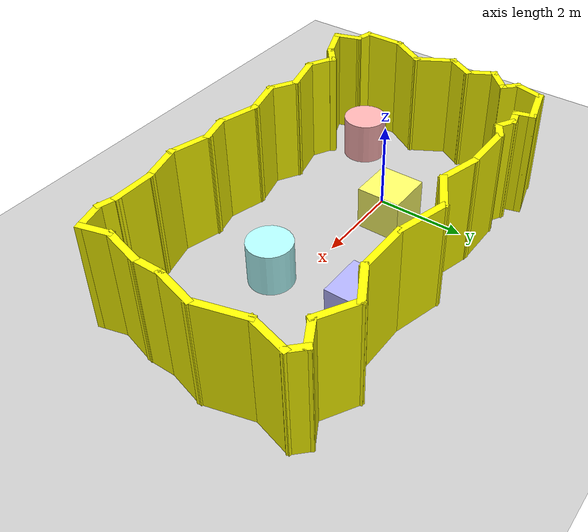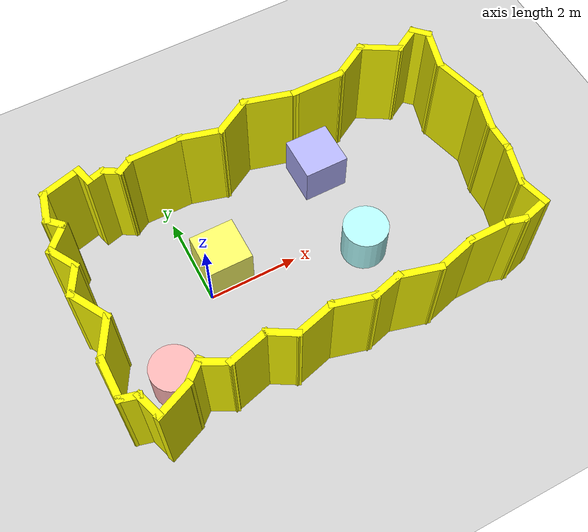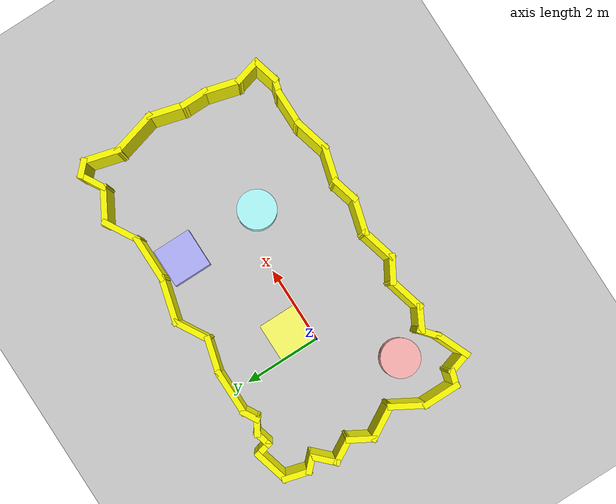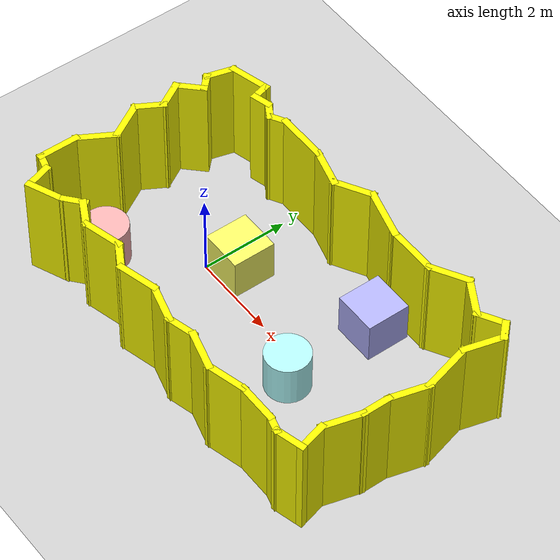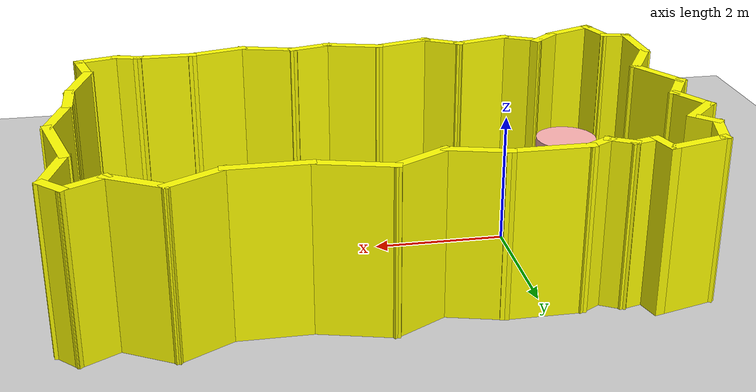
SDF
<sdf version="1.6">
 <world name="default">
  <light name="sun" type="directional">
   <pose>0 0 10 0 -0 0</pose>
   <diffuse>0.8 0.8 0.8 1</diffuse>
   <specular>0.2 0.2 0.2 1</specular>
   <attenuation>
    <range>1000</range>
    <constant>0.9</constant>
    <linear>0.01</linear>
    <quadratic>0.001</quadratic>
   </attenuation>
   <direction>-0.5 0.1 -0.9</direction>
  </light>
  <model name="ground_plane">
   <static>1</static>
   <link name="link">
    <collision name="collision">
     <geometry><plane><normal>0 0 1</normal><size>100 100</size></plane></geometry>
     <surface>
      <contact><collide_bitmask>65535</collide_bitmask></contact>
      <friction><ode><mu>100</mu><mu2>50</mu2></ode></friction>
     </surface>
    </collision>
    <visual name="visual">
     <cast_shadows>0</cast_shadows>
     <geometry><plane><normal>0 0 1</normal><size>100 100</size></plane></geometry>
     <material>
      <script><uri>file://media/materials/scripts/gazebo.material</uri><name>Gazebo/Grey</name></script>
     </material>
    </visual>
   </link>
  </model>
  <gravity>0 0 -9.8</gravity>
  <magnetic_field>6e-06 2.3e-05 -4.2e-05</magnetic_field>
  <atmosphere type="adiabatic"/>
  <physics name="default_physics" default="0" type="ode">
   <max_step_size>0.001</max_step_size>
   <real_time_factor>1</real_time_factor>
   <real_time_update_rate>1000</real_time_update_rate>
  </physics>
  <scene><ambient>0.4 0.4 0.4 1</ambient><background>0.7 0.7 0.7 1</background><shadows>1</shadows></scene>
  <audio><device>default</device></audio>
  <spherical_coordinates>
   <surface_model>EARTH_WGS84</surface_model>
   <latitude_deg>0</latitude_deg>
   <longitude_deg>0</longitude_deg>
   <elevation>0</elevation>
   <heading_deg>0</heading_deg>
  </spherical_coordinates>
  <model name="maze4">
   <pose>1.98225 -0.008661 0 0 -0 0</pose>
   <link name="Wall_10">
    <collision name="Wall_10_Collision">
     <geometry><box><size>1 0.15 2.5</size></box></geometry>
     <pose>0 0 1.25 0 -0 0</pose>
    </collision>
    <visual name="Wall_10_Visual">
     <pose>0 0 1.25 0 -0 0</pose>
     <geometry><box><size>1 0.15 2.5</size></box></geometry>
     <material>
      <script><uri>file://media/materials/scripts/gazebo.material</uri><name>Gazebo/Grey</name></script>
      <ambient>1 1 0 1</ambient>
     </material>
     <meta><layer>0</layer></meta>
    </visual>
    <pose>3.03563 -2.37458 0 0 -0 0</pose>
   </link>
   <link name="Wall_11">
    <collision name="Wall_11_Collision">
     <geometry><box><size>0.5 0.15 2.5</size></box></geometry>
     <pose>0 0 1.25 0 -0 0</pose>
    </collision>
    <visual name="Wall_11_Visual">
     <pose>0 0 1.25 0 -0 0</pose>
     <geometry><box><size>0.5 0.15 2.5</size></box></geometry>
     <material>
      <script><uri>file://media/materials/scripts/gazebo.material</uri><name>Gazebo/Grey</name></script>
      <ambient>1 1 0 1</ambient>
     </material>
     <meta><layer>0</layer></meta>
    </visual>
    <pose>3.62967 -2.41987 0 0 -0 -0.261799</pose>
   </link>
   <link name="Wall_12">
    <collision name="Wall_12_Collision">
     <geometry><box><size>0.75 0.15 2.5</size></box></geometry>
     <pose>0 0 1.25 0 -0 0</pose>
    </collision>
    <visual name="Wall_12_Visual">
     <pose>0 0 1.25 0 -0 0</pose>
     <geometry><box><size>0.75 0.15 2.5</size></box></geometry>
     <material>
      <script><uri>file://media/materials/scripts/gazebo.material</uri><name>Gazebo/Grey</name></script>
      <ambient>1 1 0 1</ambient>
     </material>
     <meta><layer>0</layer></meta>
    </visual>
    <pose>4.08848 -2.38752 0 0 -0 0.261799</pose>
   </link>
   <link name="Wall_13">
    <collision name="Wall_13_Collision">
     <geometry><box><size>0.75 0.15 2.5</size></box></geometry>
     <pose>0 0 1.25 0 -0 0</pose>
    </collision>
    <visual name="Wall_13_Visual">
     <pose>0 0 1.25 0 -0 0</pose>
     <geometry><box><size>0.75 0.15 2.5</size></box></geometry>
     <material>
      <script><uri>file://media/materials/scripts/gazebo.material</uri><name>Gazebo/Grey</name></script>
      <ambient>1 1 0 1</ambient>
     </material>
     <meta><layer>0</layer></meta>
    </visual>
    <pose>4.30061 -2.0201 0 0 -0 1.8326</pose>
   </link>
   <link name="Wall_14">
    <collision name="Wall_14_Collision">
     <geometry><box><size>1 0.15 2.5</size></box></geometry>
     <pose>0 0 1.25 0 -0 0</pose>
    </collision>
    <visual name="Wall_14_Visual">
     <pose>0 0 1.25 0 -0 0</pose>
     <geometry><box><size>1 0.15 2.5</size></box></geometry>
     <material>
      <script><uri>file://media/materials/scripts/gazebo.material</uri><name>Gazebo/Grey</name></script>
      <ambient>1 1 0 1</ambient>
     </material>
     <meta><layer>0</layer></meta>
    </visual>
    <pose>4.33297 -1.3198 0 0 -0 1.309</pose>
   </link>
   <link name="Wall_15">
    <collision name="Wall_15_Collision">
     <geometry><box><size>0.75 0.15 2.5</size></box></geometry>
     <pose>0 0 1.25 0 -0 0</pose>
    </collision>
    <visual name="Wall_15_Visual">
     <pose>0 0 1.25 0 -0 0</pose>
     <geometry><box><size>0.75 0.15 2.5</size></box></geometry>
     <material>
      <script><uri>file://media/materials/scripts/gazebo.material</uri><name>Gazebo/Grey</name></script>
      <ambient>1 1 0 1</ambient>
     </material>
     <meta><layer>0</layer></meta>
    </visual>
    <pose>4.44297 -0.609282 0 0 -0 1.5708</pose>
   </link>
   <link name="Wall_16">
    <collision name="Wall_16_Collision">
     <geometry><box><size>1 0.15 2.5</size></box></geometry>
     <pose>0 0 1.25 0 -0 0</pose>
    </collision>
    <visual name="Wall_16_Visual">
     <pose>0 0 1.25 0 -0 0</pose>
     <geometry><box><size>1 0.15 2.5</size></box></geometry>
     <material>
      <script><uri>file://media/materials/scripts/gazebo.material</uri><name>Gazebo/Grey</name></script>
      <ambient>1 1 0 1</ambient>
     </material>
     <meta><layer>0</layer></meta>
    </visual>
    <pose>4.55296 0.101236 0 0 -0 1.309</pose>
   </link>
   <link name="Wall_17">
    <collision name="Wall_17_Collision">
     <geometry><box><size>1.25 0.15 2.5</size></box></geometry>
     <pose>0 0 1.25 0 -0 0</pose>
    </collision>
    <visual name="Wall_17_Visual">
     <pose>0 0 1.25 0 -0 0</pose>
     <geometry><box><size>1.25 0.15 2.5</size></box></geometry>
     <material>
      <script><uri>file://media/materials/scripts/gazebo.material</uri><name>Gazebo/Grey</name></script>
      <ambient>1 1 0 1</ambient>
     </material>
     <meta><layer>0</layer></meta>
    </visual>
    <pose>4.52061 1.04301 0 0 -0 1.8326</pose>
   </link>
   <link name="Wall_18">
    <collision name="Wall_18_Collision">
     <geometry><box><size>1 0.15 2.5</size></box></geometry>
     <pose>0 0 1.25 0 -0 0</pose>
    </collision>
    <visual name="Wall_18_Visual">
     <pose>0 0 1.25 0 -0 0</pose>
     <geometry><box><size>1 0.15 2.5</size></box></geometry>
     <material>
      <script><uri>file://media/materials/scripts/gazebo.material</uri><name>Gazebo/Grey</name></script>
      <ambient>1 1 0 1</ambient>
     </material>
     <meta><layer>0</layer></meta>
    </visual>
    <pose>4.48826 1.98479 0 0 -0 1.309</pose>
   </link>
   <link name="Wall_19">
    <collision name="Wall_19_Collision">
     <geometry><box><size>0.5 0.15 2.5</size></box></geometry>
     <pose>0 0 1.25 0 -0 0</pose>
    </collision>
    <visual name="Wall_19_Visual">
     <pose>0 0 1.25 0 -0 0</pose>
     <geometry><box><size>0.5 0.15 2.5</size></box></geometry>
     <material>
      <script><uri>file://media/materials/scripts/gazebo.material</uri><name>Gazebo/Grey</name></script>
      <ambient>1 1 0 1</ambient>
     </material>
     <meta><layer>0</layer></meta>
    </visual>
    <pose>4.47451 2.51905 0 0 -0 2.35619</pose>
   </link>
   <link name="Wall_2">
    <collision name="Wall_2_Collision">
     <geometry><box><size>0.733012 0.15 2.5</size></box></geometry>
     <pose>0 0 1.25 0 -0 0</pose>
    </collision>
    <visual name="Wall_2_Visual">
     <pose>0 0 1.25 0 -0 0</pose>
     <geometry><box><size>0.733012 0.15 2.5</size></box></geometry>
     <material>
      <script><uri>file://media/materials/scripts/gazebo.material</uri><name>Gazebo/Grey</name></script>
      <ambient>1 1 0 1</ambient>
     </material>
     <meta><layer>0</layer></meta>
    </visual>
    <pose>-2.85174 -2.31421 0 0 -0 -0.484046</pose>
   </link>
   <link name="Wall_20">
    <collision name="Wall_20_Collision">
     <geometry><box><size>0.75 0.15 2.5</size></box></geometry>
     <pose>0 0 1.25 0 -0 0</pose>
    </collision>
    <visual name="Wall_20_Visual">
     <pose>0 0 1.25 0 -0 0</pose>
     <geometry><box><size>0.75 0.15 2.5</size></box></geometry>
     <material>
      <script><uri>file://media/materials/scripts/gazebo.material</uri><name>Gazebo/Grey</name></script>
      <ambient>1 1 0 1</ambient>
     </material>
     <meta><layer>0</layer></meta>
    </visual>
    <pose>4.09096 2.4928 0 0 -0 -2.61799</pose>
   </link>
   <link name="Wall_21">
    <collision name="Wall_21_Collision">
     <geometry><box><size>1 0.15 2.5</size></box></geometry>
     <pose>0 0 1.25 0 -0 0</pose>
    </collision>
    <visual name="Wall_21_Visual">
     <pose>0 0 1.25 0 -0 0</pose>
     <geometry><box><size>1 0.15 2.5</size></box></geometry>
     <material>
      <script><uri>file://media/materials/scripts/gazebo.material</uri><name>Gazebo/Grey</name></script>
      <ambient>1 1 0 1</ambient>
     </material>
     <meta><layer>0</layer></meta>
    </visual>
    <pose>3.46309 2.5553 0 0 -0 2.61799</pose>
   </link>
   <link name="Wall_22">
    <collision name="Wall_22_Collision">
     <geometry><box><size>1 0.15 2.5</size></box></geometry>
     <pose>0 0 1.25 0 -0 0</pose>
    </collision>
    <visual name="Wall_22_Visual">
     <pose>0 0 1.25 0 -0 0</pose>
     <geometry><box><size>1 0.15 2.5</size></box></geometry>
     <material>
      <script><uri>file://media/materials/scripts/gazebo.material</uri><name>Gazebo/Grey</name></script>
      <ambient>1 1 0 1</ambient>
     </material>
     <meta><layer>0</layer></meta>
    </visual>
    <pose>2.72697 2.5553 0 0 -0 -2.61799</pose>
   </link>
   <link name="Wall_23">
    <collision name="Wall_23_Collision">
     <geometry><box><size>1.25 0.15 2.5</size></box></geometry>
     <pose>0 0 1.25 0 -0 0</pose>
    </collision>
    <visual name="Wall_23_Visual">
     <pose>0 0 1.25 0 -0 0</pose>
     <geometry><box><size>1.25 0.15 2.5</size></box></geometry>
     <material>
      <script><uri>file://media/materials/scripts/gazebo.material</uri><name>Gazebo/Grey</name></script>
      <ambient>1 1 0 1</ambient>
     </material>
     <meta><layer>0</layer></meta>
    </visual>
    <pose>1.80891 2.3428 0 0 -0 3.14159</pose>
   </link>
   <link name="Wall_24">
    <collision name="Wall_24_Collision">
     <geometry><box><size>1.25 0.15 2.5</size></box></geometry>
     <pose>0 0 1.25 0 -0 0</pose>
    </collision>
    <visual name="Wall_24_Visual">
     <pose>0 0 1.25 0 -0 0</pose>
     <geometry><box><size>1.25 0.15 2.5</size></box></geometry>
     <material>
      <script><uri>file://media/materials/scripts/gazebo.material</uri><name>Gazebo/Grey</name></script>
      <ambient>1 1 0 1</ambient>
     </material>
     <meta><layer>0</layer></meta>
    </visual>
    <pose>0.727651 2.48515 0 0 -0 2.87979</pose>
   </link>
   <link name="Wall_25">
    <collision name="Wall_25_Collision">
     <geometry><box><size>1 0.15 2.5</size></box></geometry>
     <pose>0 0 1.25 0 -0 0</pose>
    </collision>
    <visual name="Wall_25_Visual">
     <pose>0 0 1.25 0 -0 0</pose>
     <geometry><box><size>1 0.15 2.5</size></box></geometry>
     <material>
      <script><uri>file://media/materials/scripts/gazebo.material</uri><name>Gazebo/Grey</name></script>
      <ambient>1 1 0 1</ambient>
     </material>
     <meta><layer>0</layer></meta>
    </visual>
    <pose>-0.171669 2.415 0 0 -0 -2.61799</pose>
   </link>
   <link name="Wall_26">
    <collision name="Wall_26_Collision">
     <geometry><box><size>1 0.15 2.5</size></box></geometry>
     <pose>0 0 1.25 0 -0 0</pose>
    </collision>
    <visual name="Wall_26_Visual">
     <pose>0 0 1.25 0 -0 0</pose>
     <geometry><box><size>1 0.15 2.5</size></box></geometry>
     <material>
      <script><uri>file://media/materials/scripts/gazebo.material</uri><name>Gazebo/Grey</name></script>
      <ambient>1 1 0 1</ambient>
     </material>
     <meta><layer>0</layer></meta>
    </visual>
    <pose>-0.950248 2.3125 0 0 -0 2.87979</pose>
   </link>
   <link name="Wall_27">
    <collision name="Wall_27_Collision">
     <geometry><box><size>1.25 0.15 2.5</size></box></geometry>
     <pose>0 0 1.25 0 -0 0</pose>
    </collision>
    <visual name="Wall_27_Visual">
     <pose>0 0 1.25 0 -0 0</pose>
     <geometry><box><size>1.25 0.15 2.5</size></box></geometry>
     <material>
      <script><uri>file://media/materials/scripts/gazebo.material</uri><name>Gazebo/Grey</name></script>
      <ambient>1 1 0 1</ambient>
     </material>
     <meta><layer>0</layer></meta>
    </visual>
    <pose>-1.91077 2.4225 0 0 -0 3.14159</pose>
   </link>
   <link name="Wall_28">
    <collision name="Wall_28_Collision">
     <geometry><box><size>0.5 0.15 2.5</size></box></geometry>
     <pose>0 0 1.25 0 -0 0</pose>
    </collision>
    <visual name="Wall_28_Visual">
     <pose>0 0 1.25 0 -0 0</pose>
     <geometry><box><size>0.5 0.15 2.5</size></box></geometry>
     <material>
      <script><uri>file://media/materials/scripts/gazebo.material</uri><name>Gazebo/Grey</name></script>
      <ambient>1 1 0 1</ambient>
     </material>
     <meta><layer>0</layer></meta>
    </visual>
    <pose>-2.61232 2.33499 0 0 -0 -2.61799</pose>
   </link>
   <link name="Wall_29">
    <collision name="Wall_29_Collision">
     <geometry><box><size>0.5 0.15 2.5</size></box></geometry>
     <pose>0 0 1.25 0 -0 0</pose>
    </collision>
    <visual name="Wall_29_Visual">
     <pose>0 0 1.25 0 -0 0</pose>
     <geometry><box><size>0.5 0.15 2.5</size></box></geometry>
     <material>
      <script><uri>file://media/materials/scripts/gazebo.material</uri><name>Gazebo/Grey</name></script>
      <ambient>1 1 0 1</ambient>
     </material>
     <meta><layer>0</layer></meta>
    </visual>
    <pose>-2.91543 2.33499 0 0 -0 2.61799</pose>
   </link>
   <link name="Wall_3">
    <collision name="Wall_3_Collision">
     <geometry><box><size>1 0.15 2.5</size></box></geometry>
     <pose>0 0 1.25 0 -0 0</pose>
    </collision>
    <visual name="Wall_3_Visual">
     <pose>0 0 1.25 0 -0 0</pose>
     <geometry><box><size>1 0.15 2.5</size></box></geometry>
     <material>
      <script><uri>file://media/materials/scripts/gazebo.material</uri><name>Gazebo/Grey</name></script>
      <ambient>1 1 0 1</ambient>
     </material>
     <meta><layer>0</layer></meta>
    </visual>
    <pose>-2.18321 -2.33987 0 0 -0 0.261799</pose>
   </link>
   <link name="Wall_30">
    <collision name="Wall_30_Collision">
     <geometry><box><size>0.5 0.15 2.5</size></box></geometry>
     <pose>0 0 1.25 0 -0 0</pose>
    </collision>
    <visual name="Wall_30_Visual">
     <pose>0 0 1.25 0 -0 0</pose>
     <geometry><box><size>0.5 0.15 2.5</size></box></geometry>
     <material>
      <script><uri>file://media/materials/scripts/gazebo.material</uri><name>Gazebo/Grey</name></script>
      <ambient>1 1 0 1</ambient>
     </material>
     <meta><layer>0</layer></meta>
    </visual>
    <pose>-3.23602 2.3772 0 0 -0 -2.87979</pose>
   </link>
   <link name="Wall_31">
    <collision name="Wall_31_Collision">
     <geometry><box><size>0.5 0.15 2.5</size></box></geometry>
     <pose>0 0 1.25 0 -0 0</pose>
    </collision>
    <visual name="Wall_31_Visual">
     <pose>0 0 1.25 0 -0 0</pose>
     <geometry><box><size>0.5 0.15 2.5</size></box></geometry>
     <material>
      <script><uri>file://media/materials/scripts/gazebo.material</uri><name>Gazebo/Grey</name></script>
      <ambient>1 1 0 1</ambient>
     </material>
     <meta><layer>0</layer></meta>
    </visual>
    <pose>-3.45035 2.50095 0 0 -0 1.8326</pose>
   </link>
   <link name="Wall_32">
    <collision name="Wall_32_Collision">
     <geometry><box><size>1 0.15 2.5</size></box></geometry>
     <pose>0 0 1.25 0 -0 0</pose>
    </collision>
    <visual name="Wall_32_Visual">
     <pose>0 0 1.25 0 -0 0</pose>
     <geometry><box><size>1 0.15 2.5</size></box></geometry>
     <material>
      <script><uri>file://media/materials/scripts/gazebo.material</uri><name>Gazebo/Grey</name></script>
      <ambient>1 1 0 1</ambient>
     </material>
     <meta><layer>0</layer></meta>
    </visual>
    <pose>-3.90616 2.55998 0 0 -0 -2.87979</pose>
   </link>
   <link name="Wall_33">
    <collision name="Wall_33_Collision">
     <geometry><box><size>0.75 0.15 2.5</size></box></geometry>
     <pose>0 0 1.25 0 -0 0</pose>
    </collision>
    <visual name="Wall_33_Visual">
     <pose>0 0 1.25 0 -0 0</pose>
     <geometry><box><size>0.75 0.15 2.5</size></box></geometry>
     <material>
      <script><uri>file://media/materials/scripts/gazebo.material</uri><name>Gazebo/Grey</name></script>
      <ambient>1 1 0 1</ambient>
     </material>
     <meta><layer>0</layer></meta>
    </visual>
    <pose>-4.39433 2.16021 0 0 -0 -1.8326</pose>
   </link>
   <link name="Wall_34">
    <collision name="Wall_34_Collision">
     <geometry><box><size>0.5 0.15 2.5</size></box></geometry>
     <pose>0 0 1.25 0 -0 0</pose>
    </collision>
    <visual name="Wall_34_Visual">
     <pose>0 0 1.25 0 -0 0</pose>
     <geometry><box><size>0.5 0.15 2.5</size></box></geometry>
     <material>
      <script><uri>file://media/materials/scripts/gazebo.material</uri><name>Gazebo/Grey</name></script>
      <ambient>1 1 0 1</ambient>
     </material>
     <meta><layer>0</layer></meta>
    </visual>
    <pose>-4.34823 1.74669 0 0 -0 -0.785398</pose>
   </link>
   <link name="Wall_35">
    <collision name="Wall_35_Collision">
     <geometry><box><size>0.75 0.15 2.5</size></box></geometry>
     <pose>0 0 1.25 0 -0 0</pose>
    </collision>
    <visual name="Wall_35_Visual">
     <pose>0 0 1.25 0 -0 0</pose>
     <geometry><box><size>0.75 0.15 2.5</size></box></geometry>
     <material>
      <script><uri>file://media/materials/scripts/gazebo.material</uri><name>Gazebo/Grey</name></script>
      <ambient>1 1 0 1</ambient>
     </material>
     <meta><layer>0</layer></meta>
    </visual>
    <pose>-4.43662 1.41081 0 0 -0 -2.35619</pose>
   </link>
   <link name="Wall_36">
    <collision name="Wall_36_Collision">
     <geometry><box><size>0.75 0.15 2.5</size></box></geometry>
     <pose>0 0 1.25 0 -0 0</pose>
    </collision>
    <visual name="Wall_36_Visual">
     <pose>0 0 1.25 0 -0 0</pose>
     <geometry><box><size>0.75 0.15 2.5</size></box></geometry>
     <material>
      <script><uri>file://media/materials/scripts/gazebo.material</uri><name>Gazebo/Grey</name></script>
      <ambient>1 1 0 1</ambient>
     </material>
     <meta><layer>0</layer></meta>
    </visual>
    <pose>-4.49875 0.938871 0 0 -0 -1.0472</pose>
   </link>
   <link name="Wall_37">
    <collision name="Wall_37_Collision">
     <geometry><box><size>0.75 0.15 2.5</size></box></geometry>
     <pose>0 0 1.25 0 -0 0</pose>
    </collision>
    <visual name="Wall_37_Visual">
     <pose>0 0 1.25 0 -0 0</pose>
     <geometry><box><size>0.75 0.15 2.5</size></box></geometry>
     <material>
      <script><uri>file://media/materials/scripts/gazebo.material</uri><name>Gazebo/Grey</name></script>
      <ambient>1 1 0 1</ambient>
     </material>
     <meta><layer>0</layer></meta>
    </visual>
    <pose>-4.49875 0.419256 0 0 -0 -2.0944</pose>
   </link>
   <link name="Wall_38">
    <collision name="Wall_38_Collision">
     <geometry><box><size>1 0.15 2.5</size></box></geometry>
     <pose>0 0 1.25 0 -0 0</pose>
    </collision>
    <visual name="Wall_38_Visual">
     <pose>0 0 1.25 0 -0 0</pose>
     <geometry><box><size>1 0.15 2.5</size></box></geometry>
     <material>
      <script><uri>file://media/materials/scripts/gazebo.material</uri><name>Gazebo/Grey</name></script>
      <ambient>1 1 0 1</ambient>
     </material>
     <meta><layer>0</layer></meta>
    </visual>
    <pose>-4.43625 -0.208613 0 0 -0 -1.0472</pose>
   </link>
   <link name="Wall_39">
    <collision name="Wall_39_Collision">
     <geometry><box><size>1 0.15 2.5</size></box></geometry>
     <pose>0 0 1.25 0 -0 0</pose>
    </collision>
    <visual name="Wall_39_Visual">
     <pose>0 0 1.25 0 -0 0</pose>
     <geometry><box><size>1 0.15 2.5</size></box></geometry>
     <material>
      <script><uri>file://media/materials/scripts/gazebo.material</uri><name>Gazebo/Grey</name></script>
      <ambient>1 1 0 1</ambient>
     </material>
     <meta><layer>0</layer></meta>
    </visual>
    <pose>-4.43625 -0.944734 0 0 -0 -2.0944</pose>
   </link>
   <link name="Wall_4">
    <collision name="Wall_4_Collision">
     <geometry><box><size>0.75 0.15 2.5</size></box></geometry>
     <pose>0 0 1.25 0 -0 0</pose>
    </collision>
    <visual name="Wall_4_Visual">
     <pose>0 0 1.25 0 -0 0</pose>
     <geometry><box><size>0.75 0.15 2.5</size></box></geometry>
     <material>
      <script><uri>file://media/materials/scripts/gazebo.material</uri><name>Gazebo/Grey</name></script>
      <ambient>1 1 0 1</ambient>
     </material>
     <meta><layer>0</layer></meta>
    </visual>
    <pose>-1.51288 -2.37987 0 0 -0 -0.523599</pose>
   </link>
   <link name="Wall_40">
    <collision name="Wall_40_Collision">
     <geometry><box><size>1 0.15 2.5</size></box></geometry>
     <pose>0 0 1.25 0 -0 0</pose>
    </collision>
    <visual name="Wall_40_Visual">
     <pose>0 0 1.25 0 -0 0</pose>
     <geometry><box><size>1 0.15 2.5</size></box></geometry>
     <material>
      <script><uri>file://media/materials/scripts/gazebo.material</uri><name>Gazebo/Grey</name></script>
      <ambient>1 1 0 1</ambient>
     </material>
     <meta><layer>0</layer></meta>
    </visual>
    <pose>-4.64875 -1.73779 0 0 -0 -1.5708</pose>
   </link>
   <link name="Wall_41">
    <collision name="Wall_41_Collision">
     <geometry><box><size>0.5 0.15 2.5</size></box></geometry>
     <pose>0 0 1.25 0 -0 0</pose>
    </collision>
    <visual name="Wall_41_Visual">
     <pose>0 0 1.25 0 -0 0</pose>
     <geometry><box><size>0.5 0.15 2.5</size></box></geometry>
     <material>
      <script><uri>file://media/materials/scripts/gazebo.material</uri><name>Gazebo/Grey</name></script>
      <ambient>1 1 0 1</ambient>
     </material>
     <meta><layer>0</layer></meta>
    </visual>
    <pose>-4.47971 -2.20809 0 0 -0 -0.261799</pose>
   </link>
   <link name="Wall_42">
    <collision name="Wall_42_Collision">
     <geometry><box><size>0.661908 0.15 2.5</size></box></geometry>
     <pose>0 0 1.25 0 -0 0</pose>
    </collision>
    <visual name="Wall_42_Visual">
     <pose>0 0 1.25 0 -0 0</pose>
     <geometry><box><size>0.661908 0.15 2.5</size></box></geometry>
     <material>
      <script><uri>file://media/materials/scripts/gazebo.material</uri><name>Gazebo/Grey</name></script>
      <ambient>1 1 0 1</ambient>
     </material>
     <meta><layer>0</layer></meta>
    </visual>
    <pose>-4.23303 -2.49727 0 0 -0 -1.26258</pose>
   </link>
   <link name="Wall_43">
    <collision name="Wall_43_Collision">
     <geometry><box><size>0.917701 0.15 2.5</size></box></geometry>
     <pose>0 0 1.25 0 -0 0</pose>
    </collision>
    <visual name="Wall_43_Visual">
     <pose>0 0 1.25 0 -0 0</pose>
     <geometry><box><size>0.917701 0.15 2.5</size></box></geometry>
     <material>
      <script><uri>file://media/materials/scripts/gazebo.material</uri><name>Gazebo/Grey</name></script>
      <ambient>1 1 0 1</ambient>
     </material>
     <meta><layer>0</layer></meta>
    </visual>
    <pose>-3.80262 -2.62044 0 0 -0 0.405213</pose>
   </link>
   <link name="Wall_44">
    <collision name="Wall_44_Collision">
     <geometry><box><size>0.597315 0.15 2.5</size></box></geometry>
     <pose>0 0 1.25 0 -0 0</pose>
    </collision>
    <visual name="Wall_44_Visual">
     <pose>0 0 1.25 0 -0 0</pose>
     <geometry><box><size>0.597315 0.15 2.5</size></box></geometry>
     <material>
      <script><uri>file://media/materials/scripts/gazebo.material</uri><name>Gazebo/Grey</name></script>
      <ambient>1 1 0 1</ambient>
     </material>
     <meta><layer>0</layer></meta>
    </visual>
    <pose>-3.24922 -2.29325 0 0 -0 0.707022</pose>
   </link>
   <link name="Wall_5">
    <collision name="Wall_5_Collision">
     <geometry><box><size>1 0.15 2.5</size></box></geometry>
     <pose>0 0 1.25 0 -0 0</pose>
    </collision>
    <visual name="Wall_5_Visual">
     <pose>0 0 1.25 0 -0 0</pose>
     <geometry><box><size>1 0.15 2.5</size></box></geometry>
     <material>
      <script><uri>file://media/materials/scripts/gazebo.material</uri><name>Gazebo/Grey</name></script>
      <ambient>1 1 0 1</ambient>
     </material>
     <meta><layer>0</layer></meta>
    </visual>
    <pose>-0.842555 -2.41987 0 0 -0 0.261799</pose>
   </link>
   <link name="Wall_6">
    <collision name="Wall_6_Collision">
     <geometry><box><size>1 0.15 2.5</size></box></geometry>
     <pose>0 0 1.25 0 -0 0</pose>
    </collision>
    <visual name="Wall_6_Visual">
     <pose>0 0 1.25 0 -0 0</pose>
     <geometry><box><size>1 0.15 2.5</size></box></geometry>
     <material>
      <script><uri>file://media/materials/scripts/gazebo.material</uri><name>Gazebo/Grey</name></script>
      <ambient>1 1 0 1</ambient>
     </material>
     <meta><layer>0</layer></meta>
    </visual>
    <pose>-0.021518 -2.41987 0 0 -0 -0.261799</pose>
   </link>
   <link name="Wall_7">
    <collision name="Wall_7_Collision">
     <geometry><box><size>0.75 0.15 2.5</size></box></geometry>
     <pose>0 0 1.25 0 -0 0</pose>
    </collision>
    <visual name="Wall_7_Visual">
     <pose>0 0 1.25 0 -0 0</pose>
     <geometry><box><size>0.75 0.15 2.5</size></box></geometry>
     <material>
      <script><uri>file://media/materials/scripts/gazebo.material</uri><name>Gazebo/Grey</name></script>
      <ambient>1 1 0 1</ambient>
     </material>
     <meta><layer>0</layer></meta>
    </visual>
    <pose>0.678779 -2.45222 0 0 -0 0.261799</pose>
   </link>
   <link name="Wall_8">
    <collision name="Wall_8_Collision">
     <geometry><box><size>1 0.15 2.5</size></box></geometry>
     <pose>0 0 1.25 0 -0 0</pose>
    </collision>
    <visual name="Wall_8_Visual">
     <pose>0 0 1.25 0 -0 0</pose>
     <geometry><box><size>1 0.15 2.5</size></box></geometry>
     <material>
      <script><uri>file://media/materials/scripts/gazebo.material</uri><name>Gazebo/Grey</name></script>
      <ambient>1 1 0 1</ambient>
     </material>
     <meta><layer>0</layer></meta>
    </visual>
    <pose>1.37908 -2.48458 0 0 -0 -0.261799</pose>
   </link>
   <link name="Wall_9">
    <collision name="Wall_9_Collision">
     <geometry><box><size>1 0.15 2.5</size></box></geometry>
     <pose>0 0 1.25 0 -0 0</pose>
    </collision>
    <visual name="Wall_9_Visual">
     <pose>0 0 1.25 0 -0 0</pose>
     <geometry><box><size>1 0.15 2.5</size></box></geometry>
     <material>
      <script><uri>file://media/materials/scripts/gazebo.material</uri><name>Gazebo/Grey</name></script>
      <ambient>1 1 0 1</ambient>
     </material>
     <meta><layer>0</layer></meta>
    </visual>
    <pose>2.20011 -2.48458 0 0 -0 0.261799</pose>
   </link>
   <static>1</static>
  </model>
  <model name="unit_cylinder_0">
   <link name="link">
    <inertial>
     <mass>1</mass>
     <inertia><ixx>0.145833</ixx><ixy>0</ixy><ixz>0</ixz><iyy>0.145833</iyy><iyz>0</iyz><izz>0.125</izz></inertia>
    </inertial>
    <visual name="visual">
     <geometry><cylinder><radius>0.5</radius><length>1</length></cylinder></geometry>
     <material>
      <script><name>Gazebo/Grey</name><uri>file://media/materials/scripts/gazebo.material</uri></script>
      <ambient>1 0.5 0 0</ambient>
      <shader type="vertex"><normal_map>__default__</normal_map></shader>
      <diffuse>1 0.7 0.7 1</diffuse>
      <specular>1 0.01 0.01 1</specular>
      <emissive>1 0 0 1</emissive>
     </material>
    </visual>
    <collision name="collision">
     <geometry><cylinder><radius>0.5</radius><length>1</length></cylinder></geometry>
     <surface>
      <friction>
       <ode><mu>1</mu><mu2>1</mu2><fdir1>0 0 0</fdir1><slip1>0</slip1><slip2>0</slip2></ode>
       <torsional>
        <coefficient>1</coefficient>
        <patch_radius>0</patch_radius>
        <surface_radius>0</surface_radius>
        <use_patch_radius>1</use_patch_radius>
        <ode><slip>0</slip></ode>
       </torsional>
      </friction>
      <bounce><restitution_coefficient>0</restitution_coefficient><threshold>1e+06</threshold></bounce>
      <contact>
       <collide_without_contact>0</collide_without_contact>
       <collide_without_contact_bitmask>1</collide_without_contact_bitmask>
       <collide_bitmask>1</collide_bitmask>
       <ode>
        <soft_cfm>0</soft_cfm>
        <soft_erp>0.2</soft_erp>
        <kp>1e+13</kp>
        <kd>1</kd>
        <max_vel>0.01</max_vel>
        <min_depth>0</min_depth>
       </ode>
       <bullet>
        <split_impulse>1</split_impulse>
        <split_impulse_penetration_threshold>-0.01</split_impulse_penetration_threshold>
        <soft_cfm>0</soft_cfm>
        <soft_erp>0.2</soft_erp>
        <kp>1e+13</kp>
        <kd>1</kd>
       </bullet>
      </contact>
     </surface>
    </collision>
   </link>
   <static>0</static>
   <pose>-1.4828 -1.46756 0.5 0 -0 0</pose>
  </model>
  <model name="unit_box_0">
   <link name="link">
    <inertial>
     <mass>1</mass>
     <inertia>
      <ixx>0.166667</ixx>
      <ixy>0</ixy>
      <ixz>0</ixz>
      <iyy>0.166667</iyy>
      <iyz>0</iyz>
      <izz>0.166667</izz>
     </inertia>
    </inertial>
    <visual name="visual">
     <geometry><box><size>1 1 1</size></box></geometry>
     <material>
      <script><name>Gazebo/Grey</name><uri>file://media/materials/scripts/gazebo.material</uri></script>
      <shader type="vertex"><normal_map>__default__</normal_map></shader>
      <ambient>0.3 0.3 1 1</ambient>
      <diffuse>0.7 0.7 1 1</diffuse>
      <specular>0.01 0.01 1 1</specular>
      <emissive>0 0 1 1</emissive>
     </material>
    </visual>
    <collision name="collision">
     <geometry><box><size>1 1 1</size></box></geometry>
     <surface>
      <friction>
       <ode><mu>1</mu><mu2>1</mu2><fdir1>0 0 0</fdir1><slip1>0</slip1><slip2>0</slip2></ode>
       <torsional>
        <coefficient>1</coefficient>
        <patch_radius>0</patch_radius>
        <surface_radius>0</surface_radius>
        <use_patch_radius>1</use_patch_radius>
        <ode><slip>0</slip></ode>
       </torsional>
      </friction>
      <bounce><restitution_coefficient>0</restitution_coefficient><threshold>1e+06</threshold></bounce>
      <contact>
       <collide_without_contact>0</collide_without_contact>
       <collide_without_contact_bitmask>1</collide_without_contact_bitmask>
       <collide_bitmask>1</collide_bitmask>
       <ode>
        <soft_cfm>0</soft_cfm>
        <soft_erp>0.2</soft_erp>
        <kp>1e+13</kp>
        <kd>1</kd>
        <max_vel>0.01</max_vel>
        <min_depth>0</min_depth>
       </ode>
       <bullet>
        <split_impulse>1</split_impulse>
        <split_impulse_penetration_threshold>-0.01</split_impulse_penetration_threshold>
        <soft_cfm>0</soft_cfm>
        <soft_erp>0.2</soft_erp>
        <kp>1e+13</kp>
        <kd>1</kd>
       </bullet>
      </contact>
     </surface>
    </collision>
   </link>
   <static>0</static>
   <pose>3.45436 1.70419 0.499995 -1e-05 0 0</pose>
  </model>
  <model name="unit_cylinder22">
   <link name="link">
    <inertial>
     <mass>1</mass>
     <inertia><ixx>0.145833</ixx><ixy>0</ixy><ixz>0</ixz><iyy>0.145833</iyy><iyz>0</iyz><izz>0.125</izz></inertia>
    </inertial>
    <visual name="visual">
     <geometry><cylinder><radius>0.5</radius><length>1</length></cylinder></geometry>
     <material>
      <script><name>Gazebo/Grey</name><uri>file://media/materials/scripts/gazebo.material</uri></script>
      <ambient>0 1 1 0</ambient>
      <shader type="vertex"><normal_map>__default__</normal_map></shader>
      <diffuse>0.7 1 1 1</diffuse>
      <specular>0.01 1 1 1</specular>
      <emissive>0 1 1 1</emissive>
     </material>
    </visual>
    <collision name="collision">
     <geometry><cylinder><radius>0.5</radius><length>1</length></cylinder></geometry>
     <surface>
      <friction>
       <ode><mu>1</mu><mu2>1</mu2><fdir1>0 0 0</fdir1><slip1>0</slip1><slip2>0</slip2></ode>
       <torsional>
        <coefficient>1</coefficient>
        <patch_radius>0</patch_radius>
        <surface_radius>0</surface_radius>
        <use_patch_radius>1</use_patch_radius>
        <ode><slip>0</slip></ode>
       </torsional>
      </friction>
      <bounce><restitution_coefficient>0</restitution_coefficient><threshold>1e+06</threshold></bounce>
      <contact>
       <collide_without_contact>0</collide_without_contact>
       <collide_without_contact_bitmask>1</collide_without_contact_bitmask>
       <collide_bitmask>1</collide_bitmask>
       <ode>
        <soft_cfm>0</soft_cfm>
        <soft_erp>0.2</soft_erp>
        <kp>1e+13</kp>
        <kd>1</kd>
        <max_vel>0.01</max_vel>
        <min_depth>0</min_depth>
       </ode>
       <bullet>
        <split_impulse>1</split_impulse>
        <split_impulse_penetration_threshold>-0.01</split_impulse_penetration_threshold>
        <soft_cfm>0</soft_cfm>
        <soft_erp>0.2</soft_erp>
        <kp>1e+13</kp>
        <kd>1</kd>
       </bullet>
      </contact>
     </surface>
    </collision>
   </link>
   <static>0</static>
   <pose>3.46327 -0.475172 0.499997 3e-06 4e-06 -0</pose>
  </model>
  <model name="unit_box2222">
   <link name="link">
    <inertial>
     <mass>1</mass>
     <inertia>
      <ixx>0.166667</ixx>
      <ixy>0</ixy>
      <ixz>0</ixz>
      <iyy>0.166667</iyy>
      <iyz>0</iyz>
      <izz>0.166667</izz>
     </inertia>
    </inertial>
    <visual name="visual">
     <geometry><box><size>1 1 1</size></box></geometry>
     <material>
      <script><name>Gazebo/Grey</name><uri>file://media/materials/scripts/gazebo.material</uri></script>
      <diffuse>1 1 0.4 0</diffuse>
      <shader type="vertex"><normal_map>__default__</normal_map></shader>
      <ambient>0.3 0.3 0.3 1</ambient>
      <specular>1 0.41 0.71 1</specular>
      <emissive>0.8 0.7 0 1</emissive>
     </material>
    </visual>
    <collision name="collision">
     <geometry><box><size>1 1 1</size></box></geometry>
     <surface>
      <friction>
       <ode><mu>1</mu><mu2>1</mu2><fdir1>0 0 0</fdir1><slip1>0</slip1><slip2>0</slip2></ode>
       <torsional>
        <coefficient>1</coefficient>
        <patch_radius>0</patch_radius>
        <surface_radius>0</surface_radius>
        <use_patch_radius>1</use_patch_radius>
        <ode><slip>0</slip></ode>
       </torsional>
      </friction>
      <bounce><restitution_coefficient>0</restitution_coefficient><threshold>1e+06</threshold></bounce>
      <contact>
       <collide_without_contact>0</collide_without_contact>
       <collide_without_contact_bitmask>1</collide_without_contact_bitmask>
       <collide_bitmask>1</collide_bitmask>
       <ode>
        <soft_cfm>0</soft_cfm>
        <soft_erp>0.2</soft_erp>
        <kp>1e+13</kp>
        <kd>1</kd>
        <max_vel>0.01</max_vel>
        <min_depth>0</min_depth>
       </ode>
       <bullet>
        <split_impulse>1</split_impulse>
        <split_impulse_penetration_threshold>-0.01</split_impulse_penetration_threshold>
        <soft_cfm>0</soft_cfm>
        <soft_erp>0.2</soft_erp>
        <kp>1e+13</kp>
        <kd>1</kd>
       </bullet>
      </contact>
     </surface>
    </collision>
   </link>
   <static>0</static>
   <pose>0.519124 0.508282 0.499995 -1e-05 0 0</pose>
  </model>
 </world>
</sdf>
